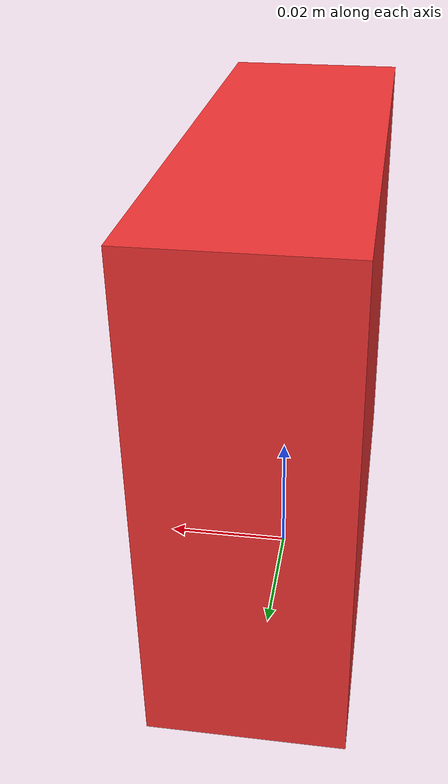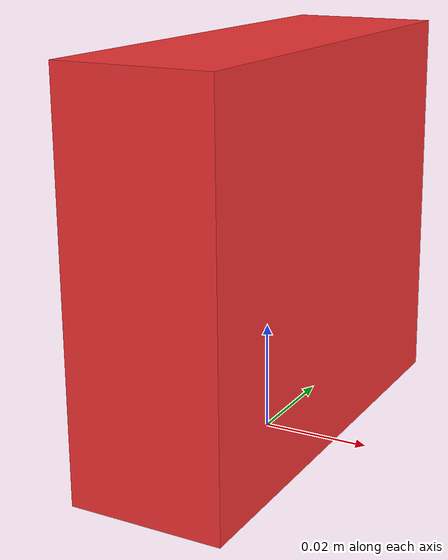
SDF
<?xml version="1.0"?>
<sdf version='1.6'>
<model name="gelatin_box">
  <link name="base_link_gelatin">
    <inertial>
      <pose frame=''>0 0 0.0365 0 0 0</pose>
      <mass>0.097</mass>
        <inertia>
          <ixx>0.000101478166667</ixx>
          <ixy>0</ixy>
          <ixz>0</ixz>
          <iyy>4.94134166667e-05</iyy>
          <iyz>0</iyz>
          <izz>6.47394166667e-05</izz>
        </inertia>
    </inertial>
    <visual name='base_link_gelatin'>
      <pose frame=''>0 0 0.0365 0 0 0</pose>
      <geometry>
        <box>
          <size>0.028 0.085 0.073</size>
        </box>
      </geometry>
      <material>
        <diffuse>0.95 0.2 0.2 1.0</diffuse>
      </material>
    </visual>

    <collision name='gelatin_box_collision'>
      <pose>0 0 0.0365 0 0 0</pose>
      <geometry>
        <box>
          <size>0.027 0.084 0.072</size>
        </box>
      </geometry>
      <material>
        <diffuse>0 1 0 1.0</diffuse>
      </material>
    </collision>

    <collision name='point_collision1'>
      <pose>0.014 0.0425 0 0 0 0</pose>
      <geometry>
        <sphere><radius>1e-7</radius></sphere>
      </geometry>
    </collision>

    <collision name='point_collision2'>
      <pose>0.014 -0.0425 0 0 0 0</pose>
      <geometry>
        <sphere><radius>1e-7</radius></sphere>
      </geometry>
    </collision>

    <collision name='point_collision3'>
      <pose>-0.014 0.0425 0 0 0 0</pose>
      <geometry>
        <sphere><radius>1e-7</radius></sphere>
      </geometry>
    </collision>

    <collision name='point_collision4'>
      <pose>-0.014 -0.0425 0 0 0 0</pose>
      <geometry>
        <sphere><radius>1e-7</radius></sphere>
      </geometry>
    </collision>

    <collision name='point_collision5'>
      <pose>0.014 0.0425 0.073 0 0 0</pose>
      <geometry>
        <sphere><radius>1e-7</radius></sphere>
      </geometry>
    </collision>

    <collision name='point_collision6'>
      <pose>0.014 -0.0425 0.073 0 0 0</pose>
      <geometry>
        <sphere><radius>1e-7</radius></sphere>
      </geometry>
    </collision>

    <collision name='point_collision7'>
      <pose>-0.014 0.0425 0.073 0 0 0</pose>
      <geometry>
        <sphere><radius>1e-7</radius></sphere>
      </geometry>
    </collision>

    <collision name='point_collision8'>
      <pose>-0.014 -0.0425 0.073 0 0 0</pose>
      <geometry>
        <sphere><radius>1e-7</radius></sphere>
      </geometry>
    </collision>

   </link>
</model>
</sdf>
